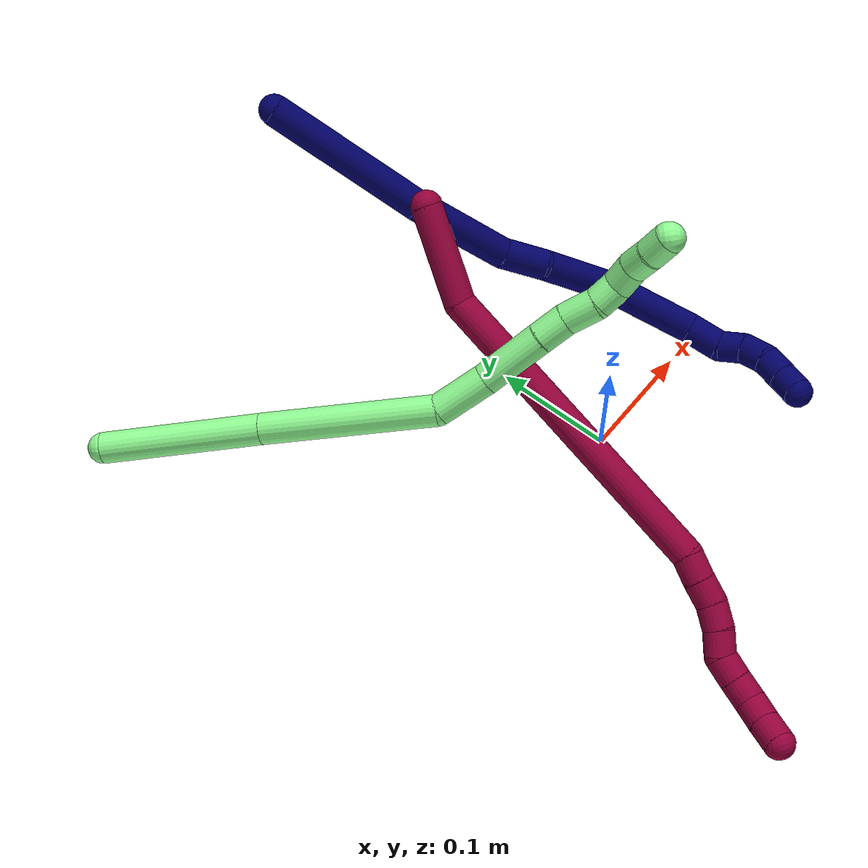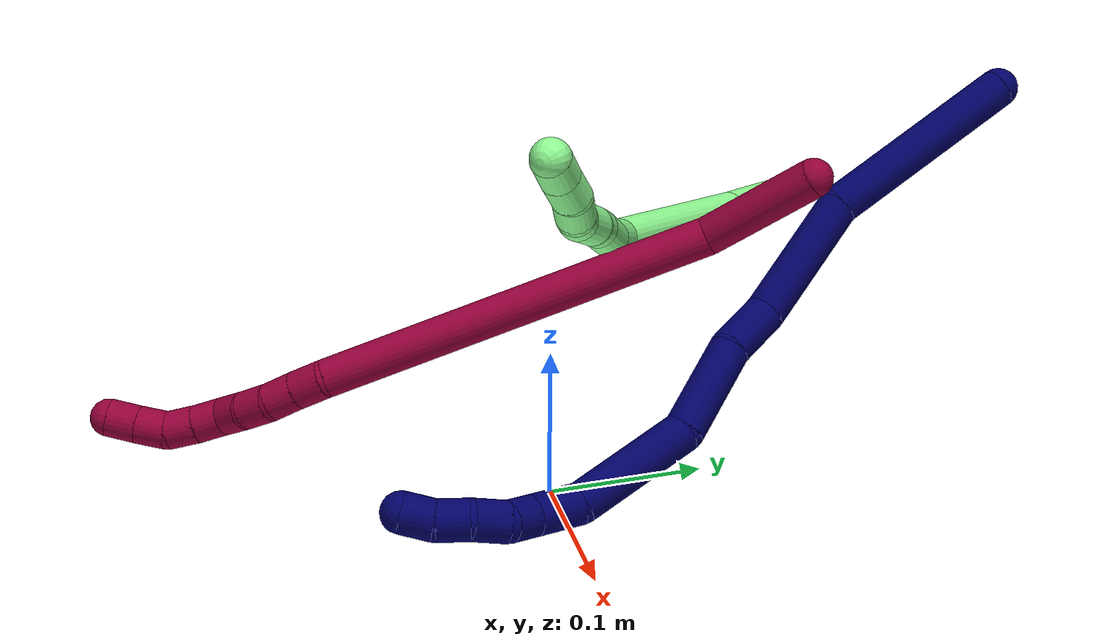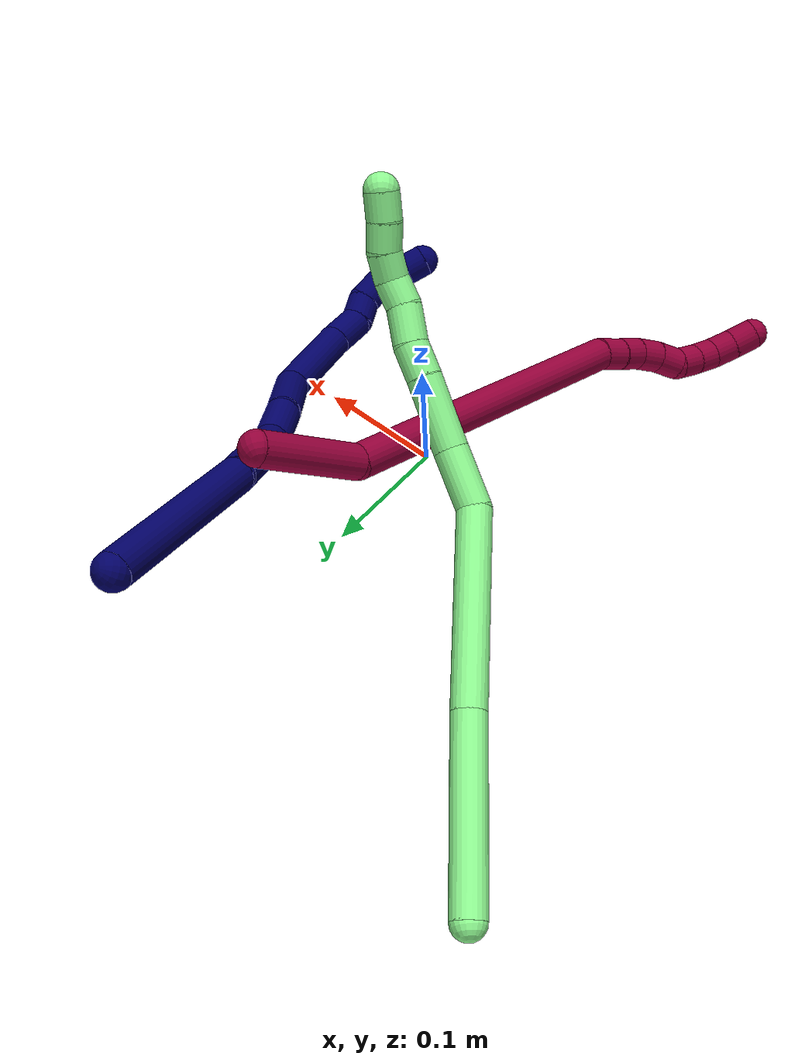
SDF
<sdf version="1.7">
 <world name="default">
  <model name="7">
   <static>0</static>
   <link name="7">
    <collision name="collision-cylinder-e_1_1_4">
     <pose>0.007265 -0.041772 -0.050498 2.45049 0.110404 0.304617</pose>
     <geometry><cylinder><radius>0.0125</radius><length>0.131874</length></cylinder></geometry>
     <surface>
      <friction><ode><mu>1.16</mu><mu2>1.16</mu2><slip1>0</slip1><slip2>0</slip2></ode></friction>
      <contact><ode><kp>1e+06</kp><kd>1</kd><max_vel>0</max_vel><min_depth>0.001</min_depth></ode></contact>
     </surface>
    </collision>
    <visual name="visual-cylinder-e_1_1_4">
     <pose>0.007265 -0.041772 -0.050498 2.45049 0.110404 0.304617</pose>
     <geometry><cylinder><radius>0.0125</radius><length>0.131874</length></cylinder></geometry>
     <material><ambient>0.003922 0 0.403922 1</ambient></material>
    </visual>
    <collision name="collision-cylinder-e_2_4_5">
     <pose>0.031657 -0.106799 -0.13104 2.48288 0.423509 1.12286</pose>
     <geometry><cylinder><radius>0.0125</radius><length>0.08335</length></cylinder></geometry>
     <surface>
      <friction><ode><mu>1.16</mu><mu2>1.16</mu2><slip1>0</slip1><slip2>0</slip2></ode></friction>
      <contact><ode><kp>1e+06</kp><kd>1</kd><max_vel>0</max_vel><min_depth>0.001</min_depth></ode></contact>
     </surface>
    </collision>
    <visual name="visual-cylinder-e_2_4_5">
     <pose>0.031657 -0.106799 -0.13104 2.48288 0.423509 1.12286</pose>
     <geometry><cylinder><radius>0.0125</radius><length>0.08335</length></cylinder></geometry>
     <material><ambient>0.003922 0 0.403922 1</ambient></material>
    </visual>
    <collision name="collision-cylinder-e_3_5_6">
     <pose>0.054035 -0.144317 -0.171028 2.1796 0.293308 0.551658</pose>
     <geometry><cylinder><radius>0.0125</radius><length>0.036325</length></cylinder></geometry>
     <surface>
      <friction><ode><mu>1.16</mu><mu2>1.16</mu2><slip1>0</slip1><slip2>0</slip2></ode></friction>
      <contact><ode><kp>1e+06</kp><kd>1</kd><max_vel>0</max_vel><min_depth>0.001</min_depth></ode></contact>
     </surface>
    </collision>
    <visual name="visual-cylinder-e_3_5_6">
     <pose>0.054035 -0.144317 -0.171028 2.1796 0.293308 0.551658</pose>
     <geometry><cylinder><radius>0.0125</radius><length>0.036325</length></cylinder></geometry>
     <material><ambient>0.003922 0 0.403922 1</ambient></material>
    </visual>
    <collision name="collision-cylinder-e_4_6_7">
     <pose>0.074434 -0.178019 -0.199037 2.3196 0.518675 1.09369</pose>
     <geometry><cylinder><radius>0.0125</radius><length>0.061113</length></cylinder></geometry>
     <surface>
      <friction><ode><mu>1.16</mu><mu2>1.16</mu2><slip1>0</slip1><slip2>0</slip2></ode></friction>
      <contact><ode><kp>1e+06</kp><kd>1</kd><max_vel>0</max_vel><min_depth>0.001</min_depth></ode></contact>
     </surface>
    </collision>
    <visual name="visual-cylinder-e_4_6_7">
     <pose>0.074434 -0.178019 -0.199037 2.3196 0.518675 1.09369</pose>
     <geometry><cylinder><radius>0.0125</radius><length>0.061113</length></cylinder></geometry>
     <material><ambient>0.003922 0 0.403922 1</ambient></material>
    </visual>
    <collision name="collision-cylinder-e_5_7_8">
     <pose>0.093323 -0.225432 -0.243352 2.32439 0.097219 0.223779</pose>
     <geometry><cylinder><radius>0.0125</radius><length>0.077085</length></cylinder></geometry>
     <surface>
      <friction><ode><mu>1.16</mu><mu2>1.16</mu2><slip1>0</slip1><slip2>0</slip2></ode></friction>
      <contact><ode><kp>1e+06</kp><kd>1</kd><max_vel>0</max_vel><min_depth>0.001</min_depth></ode></contact>
     </surface>
    </collision>
    <visual name="visual-cylinder-e_5_7_8">
     <pose>0.093323 -0.225432 -0.243352 2.32439 0.097219 0.223779</pose>
     <geometry><cylinder><radius>0.0125</radius><length>0.077085</length></cylinder></geometry>
     <material><ambient>0.003922 0 0.403922 1</ambient></material>
    </visual>
    <collision name="collision-cylinder-e_6_8_9">
     <pose>0.093621 -0.263831 -0.278663 2.2864 -0.244259 -0.526186</pose>
     <geometry><cylinder><radius>0.0125</radius><length>0.028473</length></cylinder></geometry>
     <surface>
      <friction><ode><mu>1.16</mu><mu2>1.16</mu2><slip1>0</slip1><slip2>0</slip2></ode></friction>
      <contact><ode><kp>1e+06</kp><kd>1</kd><max_vel>0</max_vel><min_depth>0.001</min_depth></ode></contact>
     </surface>
    </collision>
    <visual name="visual-cylinder-e_6_8_9">
     <pose>0.093621 -0.263831 -0.278663 2.2864 -0.244259 -0.526186</pose>
     <geometry><cylinder><radius>0.0125</radius><length>0.028473</length></cylinder></geometry>
     <material><ambient>0.003922 0 0.403922 1</ambient></material>
    </visual>
    <collision name="collision-cylinder-e_7_9_10">
     <pose>0.089041 -0.28386 -0.290432 1.84544 -0.113528 -0.149817</pose>
     <geometry><cylinder><radius>0.0125</radius><length>0.020084</length></cylinder></geometry>
     <surface>
      <friction><ode><mu>1.16</mu><mu2>1.16</mu2><slip1>0</slip1><slip2>0</slip2></ode></friction>
      <contact><ode><kp>1e+06</kp><kd>1</kd><max_vel>0</max_vel><min_depth>0.001</min_depth></ode></contact>
     </surface>
    </collision>
    <visual name="visual-cylinder-e_7_9_10">
     <pose>0.089041 -0.28386 -0.290432 1.84544 -0.113528 -0.149817</pose>
     <geometry><cylinder><radius>0.0125</radius><length>0.020084</length></cylinder></geometry>
     <material><ambient>0.003922 0 0.403922 1</ambient></material>
    </visual>
    <collision name="collision-cylinder-e_8_10_11">
     <pose>0.082641 -0.301565 -0.297852 2.09776 -0.511554 -0.853519</pose>
     <geometry><cylinder><radius>0.0125</radius><length>0.021499</length></cylinder></geometry>
     <surface>
      <friction><ode><mu>1.16</mu><mu2>1.16</mu2><slip1>0</slip1><slip2>0</slip2></ode></friction>
      <contact><ode><kp>1e+06</kp><kd>1</kd><max_vel>0</max_vel><min_depth>0.001</min_depth></ode></contact>
     </surface>
    </collision>
    <visual name="visual-cylinder-e_8_10_11">
     <pose>0.082641 -0.301565 -0.297852 2.09776 -0.511554 -0.853519</pose>
     <geometry><cylinder><radius>0.0125</radius><length>0.021499</length></cylinder></geometry>
     <material><ambient>0.003922 0 0.403922 1</ambient></material>
    </visual>
    <collision name="collision-cylinder-e_9_11_12">
     <pose>0.072429 -0.315129 -0.30942 2.4688 -0.514077 -1.28915</pose>
     <geometry><cylinder><radius>0.0125</radius><length>0.02013</length></cylinder></geometry>
     <surface>
      <friction><ode><mu>1.16</mu><mu2>1.16</mu2><slip1>0</slip1><slip2>0</slip2></ode></friction>
      <contact><ode><kp>1e+06</kp><kd>1</kd><max_vel>0</max_vel><min_depth>0.001</min_depth></ode></contact>
     </surface>
    </collision>
    <visual name="visual-cylinder-e_9_11_12">
     <pose>0.072429 -0.315129 -0.30942 2.4688 -0.514077 -1.28915</pose>
     <geometry><cylinder><radius>0.0125</radius><length>0.02013</length></cylinder></geometry>
     <material><ambient>0.003922 0 0.403922 1</ambient></material>
    </visual>
    <collision name="collision-cylinder-e_10_12_2">
     <pose>0.060486 -0.325531 -0.321504 2.38457 -0.771297 -1.59143</pose>
     <geometry><cylinder><radius>0.0125</radius><length>0.020066</length></cylinder></geometry>
     <surface>
      <friction><ode><mu>1.16</mu><mu2>1.16</mu2><slip1>0</slip1><slip2>0</slip2></ode></friction>
      <contact><ode><kp>1e+06</kp><kd>1</kd><max_vel>0</max_vel><min_depth>0.001</min_depth></ode></contact>
     </surface>
    </collision>
    <visual name="visual-cylinder-e_10_12_2">
     <pose>0.060486 -0.325531 -0.321504 2.38457 -0.771297 -1.59143</pose>
     <geometry><cylinder><radius>0.0125</radius><length>0.020066</length></cylinder></geometry>
     <material><ambient>0.003922 0 0.403922 1</ambient></material>
    </visual>
    <collision name="collision-sphere-2">
     <pose>0.053492 -0.330471 -0.326733 0 -0 0</pose>
     <geometry><sphere><radius>0.0125</radius></sphere></geometry>
     <surface>
      <friction><ode><mu>1.16</mu><mu2>1.16</mu2><slip1>0</slip1><slip2>0</slip2></ode></friction>
      <contact><ode><kp>1e+06</kp><kd>1</kd><max_vel>0</max_vel><min_depth>0.001</min_depth></ode></contact>
     </surface>
    </collision>
    <visual name="visual-sphere-2">
     <pose>0.053492 -0.330471 -0.326733 0 -0 0</pose>
     <geometry><sphere><radius>0.0125</radius></sphere></geometry>
     <material><ambient>0.003922 0 0.403922 1</ambient></material>
    </visual>
    <collision name="collision-sphere-12">
     <pose>0.06748 -0.32059 -0.316275 0 -0 0</pose>
     <geometry><sphere><radius>0.0125</radius></sphere></geometry>
     <surface>
      <friction><ode><mu>1.16</mu><mu2>1.16</mu2><slip1>0</slip1><slip2>0</slip2></ode></friction>
      <contact><ode><kp>1e+06</kp><kd>1</kd><max_vel>0</max_vel><min_depth>0.001</min_depth></ode></contact>
     </surface>
    </collision>
    <visual name="visual-sphere-12">
     <pose>0.06748 -0.32059 -0.316275 0 -0 0</pose>
     <geometry><sphere><radius>0.0125</radius></sphere></geometry>
     <material><ambient>0.003922 0 0.403922 1</ambient></material>
    </visual>
    <collision name="collision-sphere-11">
     <pose>0.077379 -0.309667 -0.302566 0 -0 0</pose>
     <geometry><sphere><radius>0.0125</radius></sphere></geometry>
     <surface>
      <friction><ode><mu>1.16</mu><mu2>1.16</mu2><slip1>0</slip1><slip2>0</slip2></ode></friction>
      <contact><ode><kp>1e+06</kp><kd>1</kd><max_vel>0</max_vel><min_depth>0.001</min_depth></ode></contact>
     </surface>
    </collision>
    <visual name="visual-sphere-11">
     <pose>0.077379 -0.309667 -0.302566 0 -0 0</pose>
     <geometry><sphere><radius>0.0125</radius></sphere></geometry>
     <material><ambient>0.003922 0 0.403922 1</ambient></material>
    </visual>
    <collision name="collision-sphere-10">
     <pose>0.087903 -0.293463 -0.293138 0 -0 0</pose>
     <geometry><sphere><radius>0.0125</radius></sphere></geometry>
     <surface>
      <friction><ode><mu>1.16</mu><mu2>1.16</mu2><slip1>0</slip1><slip2>0</slip2></ode></friction>
      <contact><ode><kp>1e+06</kp><kd>1</kd><max_vel>0</max_vel><min_depth>0.001</min_depth></ode></contact>
     </surface>
    </collision>
    <visual name="visual-sphere-10">
     <pose>0.087903 -0.293463 -0.293138 0 -0 0</pose>
     <geometry><sphere><radius>0.0125</radius></sphere></geometry>
     <material><ambient>0.003922 0 0.403922 1</ambient></material>
    </visual>
    <collision name="collision-sphere-9">
     <pose>0.090178 -0.274256 -0.287726 0 -0 0</pose>
     <geometry><sphere><radius>0.0125</radius></sphere></geometry>
     <surface>
      <friction><ode><mu>1.16</mu><mu2>1.16</mu2><slip1>0</slip1><slip2>0</slip2></ode></friction>
      <contact><ode><kp>1e+06</kp><kd>1</kd><max_vel>0</max_vel><min_depth>0.001</min_depth></ode></contact>
     </surface>
    </collision>
    <visual name="visual-sphere-9">
     <pose>0.090178 -0.274256 -0.287726 0 -0 0</pose>
     <geometry><sphere><radius>0.0125</radius></sphere></geometry>
     <material><ambient>0.003922 0 0.403922 1</ambient></material>
    </visual>
    <collision name="collision-sphere-4">
     <pose>0.01453 -0.083543 -0.100996 0 -0 0</pose>
     <geometry><sphere><radius>0.0125</radius></sphere></geometry>
     <surface>
      <friction><ode><mu>1.16</mu><mu2>1.16</mu2><slip1>0</slip1><slip2>0</slip2></ode></friction>
      <contact><ode><kp>1e+06</kp><kd>1</kd><max_vel>0</max_vel><min_depth>0.001</min_depth></ode></contact>
     </surface>
    </collision>
    <visual name="visual-sphere-4">
     <pose>0.01453 -0.083543 -0.100996 0 -0 0</pose>
     <geometry><sphere><radius>0.0125</radius></sphere></geometry>
     <material><ambient>0.003922 0 0.403922 1</ambient></material>
    </visual>
    <collision name="collision-sphere-1">
     <geometry><sphere><radius>0.0125</radius></sphere></geometry>
     <surface>
      <friction><ode><mu>1.16</mu><mu2>1.16</mu2><slip1>0</slip1><slip2>0</slip2></ode></friction>
      <contact><ode><kp>1e+06</kp><kd>1</kd><max_vel>0</max_vel><min_depth>0.001</min_depth></ode></contact>
     </surface>
    </collision>
    <visual name="visual-sphere-1">
     <geometry><sphere><radius>0.0125</radius></sphere></geometry>
     <material><ambient>0.003922 0 0.403922 1</ambient></material>
    </visual>
    <collision name="collision-sphere-8">
     <pose>0.097064 -0.253406 -0.269601 0 -0 0</pose>
     <geometry><sphere><radius>0.0125</radius></sphere></geometry>
     <surface>
      <friction><ode><mu>1.16</mu><mu2>1.16</mu2><slip1>0</slip1><slip2>0</slip2></ode></friction>
      <contact><ode><kp>1e+06</kp><kd>1</kd><max_vel>0</max_vel><min_depth>0.001</min_depth></ode></contact>
     </surface>
    </collision>
    <visual name="visual-sphere-8">
     <pose>0.097064 -0.253406 -0.269601 0 -0 0</pose>
     <geometry><sphere><radius>0.0125</radius></sphere></geometry>
     <material><ambient>0.003922 0 0.403922 1</ambient></material>
    </visual>
    <collision name="collision-sphere-5">
     <pose>0.048784 -0.130054 -0.161085 0 -0 0</pose>
     <geometry><sphere><radius>0.0125</radius></sphere></geometry>
     <surface>
      <friction><ode><mu>1.16</mu><mu2>1.16</mu2><slip1>0</slip1><slip2>0</slip2></ode></friction>
      <contact><ode><kp>1e+06</kp><kd>1</kd><max_vel>0</max_vel><min_depth>0.001</min_depth></ode></contact>
     </surface>
    </collision>
    <visual name="visual-sphere-5">
     <pose>0.048784 -0.130054 -0.161085 0 -0 0</pose>
     <geometry><sphere><radius>0.0125</radius></sphere></geometry>
     <material><ambient>0.003922 0 0.403922 1</ambient></material>
    </visual>
    <collision name="collision-sphere-6">
     <pose>0.059286 -0.15858 -0.180971 0 -0 0</pose>
     <geometry><sphere><radius>0.0125</radius></sphere></geometry>
     <surface>
      <friction><ode><mu>1.16</mu><mu2>1.16</mu2><slip1>0</slip1><slip2>0</slip2></ode></friction>
      <contact><ode><kp>1e+06</kp><kd>1</kd><max_vel>0</max_vel><min_depth>0.001</min_depth></ode></contact>
     </surface>
    </collision>
    <visual name="visual-sphere-6">
     <pose>0.059286 -0.15858 -0.180971 0 -0 0</pose>
     <geometry><sphere><radius>0.0125</radius></sphere></geometry>
     <material><ambient>0.003922 0 0.403922 1</ambient></material>
    </visual>
    <collision name="collision-sphere-7">
     <pose>0.089582 -0.197458 -0.217103 0 -0 0</pose>
     <geometry><sphere><radius>0.0125</radius></sphere></geometry>
     <surface>
      <friction><ode><mu>1.16</mu><mu2>1.16</mu2><slip1>0</slip1><slip2>0</slip2></ode></friction>
      <contact><ode><kp>1e+06</kp><kd>1</kd><max_vel>0</max_vel><min_depth>0.001</min_depth></ode></contact>
     </surface>
    </collision>
    <visual name="visual-sphere-7">
     <pose>0.089582 -0.197458 -0.217103 0 -0 0</pose>
     <geometry><sphere><radius>0.0125</radius></sphere></geometry>
     <material><ambient>0.003922 0 0.403922 1</ambient></material>
    </visual>
    <inertial>
     <pose>0.052409 -0.160963 -0.175136 0 -0 0</pose>
     <mass>0.5</mass>
     <inertia>
      <ixx>0.000393</ixx>
      <ixy>0</ixy>
      <ixz>0</ixz>
      <iyy>-7.7e-05</iyy>
      <iyz>0</iyz>
      <izz>0.000126</izz>
     </inertia>
    </inertial>
   </link>
   <pose>-0.037056 0.303386 0.226611 -0.434053 0.634918 0.429129</pose>
  </model>
  <model name="8">
   <static>0</static>
   <link name="8">
    <collision name="collision-cylinder-e_1_1_4">
     <pose>-0.018624 -0.034772 -0.001416 1.6115 -0.49138 -0.510938</pose>
     <geometry><cylinder><radius>0.0125</radius><length>0.078942</length></cylinder></geometry>
     <surface>
      <friction><ode><mu>1.16</mu><mu2>1.16</mu2><slip1>0</slip1><slip2>0</slip2></ode></friction>
      <contact><ode><kp>1e+06</kp><kd>1</kd><max_vel>0</max_vel><min_depth>0.001</min_depth></ode></contact>
     </surface>
    </collision>
    <visual name="visual-cylinder-e_1_1_4">
     <pose>-0.018624 -0.034772 -0.001416 1.6115 -0.49138 -0.510938</pose>
     <geometry><cylinder><radius>0.0125</radius><length>0.078942</length></cylinder></geometry>
     <material><ambient>0.584314 0 0.227451 1</ambient></material>
    </visual>
    <collision name="collision-cylinder-e_2_4_5">
     <pose>-0.065665 -0.184755 -0.054314 1.99102 -0.221495 -0.339675</pose>
     <geometry><cylinder><radius>0.0125</radius><length>0.258701</length></cylinder></geometry>
     <surface>
      <friction><ode><mu>1.16</mu><mu2>1.16</mu2><slip1>0</slip1><slip2>0</slip2></ode></friction>
      <contact><ode><kp>1e+06</kp><kd>1</kd><max_vel>0</max_vel><min_depth>0.001</min_depth></ode></contact>
     </surface>
    </collision>
    <visual name="visual-cylinder-e_2_4_5">
     <pose>-0.065665 -0.184755 -0.054314 1.99102 -0.221495 -0.339675</pose>
     <geometry><cylinder><radius>0.0125</radius><length>0.258701</length></cylinder></geometry>
     <material><ambient>0.584314 0 0.227451 1</ambient></material>
    </visual>
    <collision name="collision-cylinder-e_3_5_6">
     <pose>-0.097726 -0.309753 -0.107086 1.70198 -0.353678 -0.402158</pose>
     <geometry><cylinder><radius>0.0125</radius><length>0.021046</length></cylinder></geometry>
     <surface>
      <friction><ode><mu>1.16</mu><mu2>1.16</mu2><slip1>0</slip1><slip2>0</slip2></ode></friction>
      <contact><ode><kp>1e+06</kp><kd>1</kd><max_vel>0</max_vel><min_depth>0.001</min_depth></ode></contact>
     </surface>
    </collision>
    <visual name="visual-cylinder-e_3_5_6">
     <pose>-0.097726 -0.309753 -0.107086 1.70198 -0.353678 -0.402158</pose>
     <geometry><cylinder><radius>0.0125</radius><length>0.021046</length></cylinder></geometry>
     <material><ambient>0.584314 0 0.227451 1</ambient></material>
    </visual>
    <collision name="collision-cylinder-e_4_6_7">
     <pose>-0.10503 -0.328816 -0.110276 1.77266 -0.368773 -0.449359</pose>
     <geometry><cylinder><radius>0.0125</radius><length>0.020301</length></cylinder></geometry>
     <surface>
      <friction><ode><mu>1.16</mu><mu2>1.16</mu2><slip1>0</slip1><slip2>0</slip2></ode></friction>
      <contact><ode><kp>1e+06</kp><kd>1</kd><max_vel>0</max_vel><min_depth>0.001</min_depth></ode></contact>
     </surface>
    </collision>
    <visual name="visual-cylinder-e_4_6_7">
     <pose>-0.10503 -0.328816 -0.110276 1.77266 -0.368773 -0.449359</pose>
     <geometry><cylinder><radius>0.0125</radius><length>0.020301</length></cylinder></geometry>
     <material><ambient>0.584314 0 0.227451 1</ambient></material>
    </visual>
    <collision name="collision-cylinder-e_5_7_8">
     <pose>-0.112148 -0.347773 -0.111627 1.51437 -0.34268 -0.324206</pose>
     <geometry><cylinder><radius>0.0125</radius><length>0.020592</length></cylinder></geometry>
     <surface>
      <friction><ode><mu>1.16</mu><mu2>1.16</mu2><slip1>0</slip1><slip2>0</slip2></ode></friction>
      <contact><ode><kp>1e+06</kp><kd>1</kd><max_vel>0</max_vel><min_depth>0.001</min_depth></ode></contact>
     </surface>
    </collision>
    <visual name="visual-cylinder-e_5_7_8">
     <pose>-0.112148 -0.347773 -0.111627 1.51437 -0.34268 -0.324206</pose>
     <geometry><cylinder><radius>0.0125</radius><length>0.020592</length></cylinder></geometry>
     <material><ambient>0.584314 0 0.227451 1</ambient></material>
    </visual>
    <collision name="collision-cylinder-e_6_8_9">
     <pose>-0.119194 -0.366663 -0.108519 1.29952 -0.359009 -0.274026</pose>
     <geometry><cylinder><radius>0.0125</radius><length>0.020417</length></cylinder></geometry>
     <surface>
      <friction><ode><mu>1.16</mu><mu2>1.16</mu2><slip1>0</slip1><slip2>0</slip2></ode></friction>
      <contact><ode><kp>1e+06</kp><kd>1</kd><max_vel>0</max_vel><min_depth>0.001</min_depth></ode></contact>
     </surface>
    </collision>
    <visual name="visual-cylinder-e_6_8_9">
     <pose>-0.119194 -0.366663 -0.108519 1.29952 -0.359009 -0.274026</pose>
     <geometry><cylinder><radius>0.0125</radius><length>0.020417</length></cylinder></geometry>
     <material><ambient>0.584314 0 0.227451 1</ambient></material>
    </visual>
    <collision name="collision-cylinder-e_7_9_10">
     <pose>-0.124916 -0.385354 -0.10831 1.81388 -0.215122 -0.274317</pose>
     <geometry><cylinder><radius>0.0125</radius><length>0.020002</length></cylinder></geometry>
     <surface>
      <friction><ode><mu>1.16</mu><mu2>1.16</mu2><slip1>0</slip1><slip2>0</slip2></ode></friction>
      <contact><ode><kp>1e+06</kp><kd>1</kd><max_vel>0</max_vel><min_depth>0.001</min_depth></ode></contact>
     </surface>
    </collision>
    <visual name="visual-cylinder-e_7_9_10">
     <pose>-0.124916 -0.385354 -0.10831 1.81388 -0.215122 -0.274317</pose>
     <geometry><cylinder><radius>0.0125</radius><length>0.020002</length></cylinder></geometry>
     <material><ambient>0.584314 0 0.227451 1</ambient></material>
    </visual>
    <collision name="collision-cylinder-e_8_10_11">
     <pose>-0.128436 -0.404417 -0.113175 1.82737 -0.138958 -0.179921</pose>
     <geometry><cylinder><radius>0.0125</radius><length>0.02</length></cylinder></geometry>
     <surface>
      <friction><ode><mu>1.16</mu><mu2>1.16</mu2><slip1>0</slip1><slip2>0</slip2></ode></friction>
      <contact><ode><kp>1e+06</kp><kd>1</kd><max_vel>0</max_vel><min_depth>0.001</min_depth></ode></contact>
     </surface>
    </collision>
    <visual name="visual-cylinder-e_8_10_11">
     <pose>-0.128436 -0.404417 -0.113175 1.82737 -0.138958 -0.179921</pose>
     <geometry><cylinder><radius>0.0125</radius><length>0.02</length></cylinder></geometry>
     <material><ambient>0.584314 0 0.227451 1</ambient></material>
    </visual>
    <collision name="collision-cylinder-e_9_11_12">
     <pose>-0.127307 -0.42359 -0.116975 1.70413 0.254167 0.290057</pose>
     <geometry><cylinder><radius>0.0125</radius><length>0.02</length></cylinder></geometry>
     <surface>
      <friction><ode><mu>1.16</mu><mu2>1.16</mu2><slip1>0</slip1><slip2>0</slip2></ode></friction>
      <contact><ode><kp>1e+06</kp><kd>1</kd><max_vel>0</max_vel><min_depth>0.001</min_depth></ode></contact>
     </surface>
    </collision>
    <visual name="visual-cylinder-e_9_11_12">
     <pose>-0.127307 -0.42359 -0.116975 1.70413 0.254167 0.290057</pose>
     <geometry><cylinder><radius>0.0125</radius><length>0.02</length></cylinder></geometry>
     <material><ambient>0.584314 0 0.227451 1</ambient></material>
    </visual>
    <collision name="collision-cylinder-e_10_12_2">
     <pose>-0.121808 -0.442613 -0.119733 1.72559 0.303036 0.353011</pose>
     <geometry><cylinder><radius>0.0125</radius><length>0.02</length></cylinder></geometry>
     <surface>
      <friction><ode><mu>1.16</mu><mu2>1.16</mu2><slip1>0</slip1><slip2>0</slip2></ode></friction>
      <contact><ode><kp>1e+06</kp><kd>1</kd><max_vel>0</max_vel><min_depth>0.001</min_depth></ode></contact>
     </surface>
    </collision>
    <visual name="visual-cylinder-e_10_12_2">
     <pose>-0.121808 -0.442613 -0.119733 1.72559 0.303036 0.353011</pose>
     <geometry><cylinder><radius>0.0125</radius><length>0.02</length></cylinder></geometry>
     <material><ambient>0.584314 0 0.227451 1</ambient></material>
    </visual>
    <collision name="collision-sphere-2">
     <pose>-0.118824 -0.452043 -0.121204 0 -0 0</pose>
     <geometry><sphere><radius>0.0125</radius></sphere></geometry>
     <surface>
      <friction><ode><mu>1.16</mu><mu2>1.16</mu2><slip1>0</slip1><slip2>0</slip2></ode></friction>
      <contact><ode><kp>1e+06</kp><kd>1</kd><max_vel>0</max_vel><min_depth>0.001</min_depth></ode></contact>
     </surface>
    </collision>
    <visual name="visual-sphere-2">
     <pose>-0.118824 -0.452043 -0.121204 0 -0 0</pose>
     <geometry><sphere><radius>0.0125</radius></sphere></geometry>
     <material><ambient>0.584314 0 0.227451 1</ambient></material>
    </visual>
    <collision name="collision-sphere-12">
     <pose>-0.124792 -0.433183 -0.118261 0 -0 0</pose>
     <geometry><sphere><radius>0.0125</radius></sphere></geometry>
     <surface>
      <friction><ode><mu>1.16</mu><mu2>1.16</mu2><slip1>0</slip1><slip2>0</slip2></ode></friction>
      <contact><ode><kp>1e+06</kp><kd>1</kd><max_vel>0</max_vel><min_depth>0.001</min_depth></ode></contact>
     </surface>
    </collision>
    <visual name="visual-sphere-12">
     <pose>-0.124792 -0.433183 -0.118261 0 -0 0</pose>
     <geometry><sphere><radius>0.0125</radius></sphere></geometry>
     <material><ambient>0.584314 0 0.227451 1</ambient></material>
    </visual>
    <collision name="collision-sphere-11">
     <pose>-0.129821 -0.413997 -0.115688 0 -0 0</pose>
     <geometry><sphere><radius>0.0125</radius></sphere></geometry>
     <surface>
      <friction><ode><mu>1.16</mu><mu2>1.16</mu2><slip1>0</slip1><slip2>0</slip2></ode></friction>
      <contact><ode><kp>1e+06</kp><kd>1</kd><max_vel>0</max_vel><min_depth>0.001</min_depth></ode></contact>
     </surface>
    </collision>
    <visual name="visual-sphere-11">
     <pose>-0.129821 -0.413997 -0.115688 0 -0 0</pose>
     <geometry><sphere><radius>0.0125</radius></sphere></geometry>
     <material><ambient>0.584314 0 0.227451 1</ambient></material>
    </visual>
    <collision name="collision-sphere-10">
     <pose>-0.127051 -0.394838 -0.110662 0 -0 0</pose>
     <geometry><sphere><radius>0.0125</radius></sphere></geometry>
     <surface>
      <friction><ode><mu>1.16</mu><mu2>1.16</mu2><slip1>0</slip1><slip2>0</slip2></ode></friction>
      <contact><ode><kp>1e+06</kp><kd>1</kd><max_vel>0</max_vel><min_depth>0.001</min_depth></ode></contact>
     </surface>
    </collision>
    <visual name="visual-sphere-10">
     <pose>-0.127051 -0.394838 -0.110662 0 -0 0</pose>
     <geometry><sphere><radius>0.0125</radius></sphere></geometry>
     <material><ambient>0.584314 0 0.227451 1</ambient></material>
    </visual>
    <collision name="collision-sphere-9">
     <pose>-0.122781 -0.375871 -0.105958 0 -0 0</pose>
     <geometry><sphere><radius>0.0125</radius></sphere></geometry>
     <surface>
      <friction><ode><mu>1.16</mu><mu2>1.16</mu2><slip1>0</slip1><slip2>0</slip2></ode></friction>
      <contact><ode><kp>1e+06</kp><kd>1</kd><max_vel>0</max_vel><min_depth>0.001</min_depth></ode></contact>
     </surface>
    </collision>
    <visual name="visual-sphere-9">
     <pose>-0.122781 -0.375871 -0.105958 0 -0 0</pose>
     <geometry><sphere><radius>0.0125</radius></sphere></geometry>
     <material><ambient>0.584314 0 0.227451 1</ambient></material>
    </visual>
    <collision name="collision-sphere-4">
     <pose>-0.037248 -0.069544 -0.002832 0 -0 0</pose>
     <geometry><sphere><radius>0.0125</radius></sphere></geometry>
     <surface>
      <friction><ode><mu>1.16</mu><mu2>1.16</mu2><slip1>0</slip1><slip2>0</slip2></ode></friction>
      <contact><ode><kp>1e+06</kp><kd>1</kd><max_vel>0</max_vel><min_depth>0.001</min_depth></ode></contact>
     </surface>
    </collision>
    <visual name="visual-sphere-4">
     <pose>-0.037248 -0.069544 -0.002832 0 -0 0</pose>
     <geometry><sphere><radius>0.0125</radius></sphere></geometry>
     <material><ambient>0.584314 0 0.227451 1</ambient></material>
    </visual>
    <collision name="collision-sphere-1">
     <geometry><sphere><radius>0.0125</radius></sphere></geometry>
     <surface>
      <friction><ode><mu>1.16</mu><mu2>1.16</mu2><slip1>0</slip1><slip2>0</slip2></ode></friction>
      <contact><ode><kp>1e+06</kp><kd>1</kd><max_vel>0</max_vel><min_depth>0.001</min_depth></ode></contact>
     </surface>
    </collision>
    <visual name="visual-sphere-1">
     <geometry><sphere><radius>0.0125</radius></sphere></geometry>
     <material><ambient>0.584314 0 0.227451 1</ambient></material>
    </visual>
    <collision name="collision-sphere-8">
     <pose>-0.115608 -0.357455 -0.11108 0 -0 0</pose>
     <geometry><sphere><radius>0.0125</radius></sphere></geometry>
     <surface>
      <friction><ode><mu>1.16</mu><mu2>1.16</mu2><slip1>0</slip1><slip2>0</slip2></ode></friction>
      <contact><ode><kp>1e+06</kp><kd>1</kd><max_vel>0</max_vel><min_depth>0.001</min_depth></ode></contact>
     </surface>
    </collision>
    <visual name="visual-sphere-8">
     <pose>-0.115608 -0.357455 -0.11108 0 -0 0</pose>
     <geometry><sphere><radius>0.0125</radius></sphere></geometry>
     <material><ambient>0.584314 0 0.227451 1</ambient></material>
    </visual>
    <collision name="collision-sphere-5">
     <pose>-0.094082 -0.299966 -0.105795 0 -0 0</pose>
     <geometry><sphere><radius>0.0125</radius></sphere></geometry>
     <surface>
      <friction><ode><mu>1.16</mu><mu2>1.16</mu2><slip1>0</slip1><slip2>0</slip2></ode></friction>
      <contact><ode><kp>1e+06</kp><kd>1</kd><max_vel>0</max_vel><min_depth>0.001</min_depth></ode></contact>
     </surface>
    </collision>
    <visual name="visual-sphere-5">
     <pose>-0.094082 -0.299966 -0.105795 0 -0 0</pose>
     <geometry><sphere><radius>0.0125</radius></sphere></geometry>
     <material><ambient>0.584314 0 0.227451 1</ambient></material>
    </visual>
    <collision name="collision-sphere-6">
     <pose>-0.101371 -0.31954 -0.108378 0 -0 0</pose>
     <geometry><sphere><radius>0.0125</radius></sphere></geometry>
     <surface>
      <friction><ode><mu>1.16</mu><mu2>1.16</mu2><slip1>0</slip1><slip2>0</slip2></ode></friction>
      <contact><ode><kp>1e+06</kp><kd>1</kd><max_vel>0</max_vel><min_depth>0.001</min_depth></ode></contact>
     </surface>
    </collision>
    <visual name="visual-sphere-6">
     <pose>-0.101371 -0.31954 -0.108378 0 -0 0</pose>
     <geometry><sphere><radius>0.0125</radius></sphere></geometry>
     <material><ambient>0.584314 0 0.227451 1</ambient></material>
    </visual>
    <collision name="collision-sphere-7">
     <pose>-0.108689 -0.338091 -0.112174 0 -0 0</pose>
     <geometry><sphere><radius>0.0125</radius></sphere></geometry>
     <surface>
      <friction><ode><mu>1.16</mu><mu2>1.16</mu2><slip1>0</slip1><slip2>0</slip2></ode></friction>
      <contact><ode><kp>1e+06</kp><kd>1</kd><max_vel>0</max_vel><min_depth>0.001</min_depth></ode></contact>
     </surface>
    </collision>
    <visual name="visual-sphere-7">
     <pose>-0.108689 -0.338091 -0.112174 0 -0 0</pose>
     <geometry><sphere><radius>0.0125</radius></sphere></geometry>
     <material><ambient>0.584314 0 0.227451 1</ambient></material>
    </visual>
    <inertial>
     <pose>-0.074878 -0.223007 -0.064667 0 -0 0</pose>
     <mass>0.5</mass>
     <inertia>
      <ixx>0.000879</ixx>
      <ixy>0</ixy>
      <ixz>0</ixz>
      <iyy>-0.000982</iyy>
      <iyz>0</iyz>
      <izz>0.001676</izz>
     </inertia>
    </inertial>
   </link>
   <pose>-0.014204 0.172081 0.190316 1.95598 -1.42197 -2.52133</pose>
  </model>
  <model name="13">
   <static>0</static>
   <link name="13">
    <collision name="collision-cylinder-e_1_1_4">
     <pose>0.000198 -0.010156 -0.064405 2.9852 0.003038 0.03877</pose>
     <geometry><cylinder><radius>0.0125</radius><length>0.130403</length></cylinder></geometry>
     <surface>
      <friction><ode><mu>1.16</mu><mu2>1.16</mu2><slip1>0</slip1><slip2>0</slip2></ode></friction>
      <contact><ode><kp>1e+06</kp><kd>1</kd><max_vel>0</max_vel><min_depth>0.001</min_depth></ode></contact>
     </surface>
    </collision>
    <visual name="visual-cylinder-e_1_1_4">
     <pose>0.000198 -0.010156 -0.064405 2.9852 0.003038 0.03877</pose>
     <geometry><cylinder><radius>0.0125</radius><length>0.130403</length></cylinder></geometry>
     <material><ambient>0.564706 0.984314 0.572549 1</ambient></material>
    </visual>
    <collision name="collision-cylinder-e_2_4_5">
     <pose>-0.000493 -0.032882 -0.198412 2.96291 -0.012573 -0.140127</pose>
     <geometry><cylinder><radius>0.0125</radius><length>0.141466</length></cylinder></geometry>
     <surface>
      <friction><ode><mu>1.16</mu><mu2>1.16</mu2><slip1>0</slip1><slip2>0</slip2></ode></friction>
      <contact><ode><kp>1e+06</kp><kd>1</kd><max_vel>0</max_vel><min_depth>0.001</min_depth></ode></contact>
     </surface>
    </collision>
    <visual name="visual-cylinder-e_2_4_5">
     <pose>-0.000493 -0.032882 -0.198412 2.96291 -0.012573 -0.140127</pose>
     <geometry><cylinder><radius>0.0125</radius><length>0.141466</length></cylinder></geometry>
     <material><ambient>0.564706 0.984314 0.572549 1</ambient></material>
    </visual>
    <collision name="collision-cylinder-e_3_5_6">
     <pose>0.008174 -0.049359 -0.287199 2.94075 0.45405 2.31901</pose>
     <geometry><cylinder><radius>0.0125</radius><length>0.043576</length></cylinder></geometry>
     <surface>
      <friction><ode><mu>1.16</mu><mu2>1.16</mu2><slip1>0</slip1><slip2>0</slip2></ode></friction>
      <contact><ode><kp>1e+06</kp><kd>1</kd><max_vel>0</max_vel><min_depth>0.001</min_depth></ode></contact>
     </surface>
    </collision>
    <visual name="visual-cylinder-e_3_5_6">
     <pose>0.008174 -0.049359 -0.287199 2.94075 0.45405 2.31901</pose>
     <geometry><cylinder><radius>0.0125</radius><length>0.043576</length></cylinder></geometry>
     <material><ambient>0.564706 0.984314 0.572549 1</ambient></material>
    </visual>
    <collision name="collision-cylinder-e_4_6_7">
     <pose>0.030217 -0.060753 -0.328223 2.81125 0.495839 1.97689</pose>
     <geometry><cylinder><radius>0.0125</radius><length>0.052492</length></cylinder></geometry>
     <surface>
      <friction><ode><mu>1.16</mu><mu2>1.16</mu2><slip1>0</slip1><slip2>0</slip2></ode></friction>
      <contact><ode><kp>1e+06</kp><kd>1</kd><max_vel>0</max_vel><min_depth>0.001</min_depth></ode></contact>
     </surface>
    </collision>
    <visual name="visual-cylinder-e_4_6_7">
     <pose>0.030217 -0.060753 -0.328223 2.81125 0.495839 1.97689</pose>
     <geometry><cylinder><radius>0.0125</radius><length>0.052492</length></cylinder></geometry>
     <material><ambient>0.564706 0.984314 0.572549 1</ambient></material>
    </visual>
    <collision name="collision-cylinder-e_5_7_8">
     <pose>0.048562 -0.070934 -0.360454 2.88808 0.499464 2.21486</pose>
     <geometry><cylinder><radius>0.0125</radius><length>0.024463</length></cylinder></geometry>
     <surface>
      <friction><ode><mu>1.16</mu><mu2>1.16</mu2><slip1>0</slip1><slip2>0</slip2></ode></friction>
      <contact><ode><kp>1e+06</kp><kd>1</kd><max_vel>0</max_vel><min_depth>0.001</min_depth></ode></contact>
     </surface>
    </collision>
    <visual name="visual-cylinder-e_5_7_8">
     <pose>0.048562 -0.070934 -0.360454 2.88808 0.499464 2.21486</pose>
     <geometry><cylinder><radius>0.0125</radius><length>0.024463</length></cylinder></geometry>
     <material><ambient>0.564706 0.984314 0.572549 1</ambient></material>
    </visual>
    <collision name="collision-cylinder-e_6_8_9">
     <pose>0.058559 -0.078149 -0.382917 2.78315 0.310669 1.42556</pose>
     <geometry><cylinder><radius>0.0125</radius><length>0.027073</length></cylinder></geometry>
     <surface>
      <friction><ode><mu>1.16</mu><mu2>1.16</mu2><slip1>0</slip1><slip2>0</slip2></ode></friction>
      <contact><ode><kp>1e+06</kp><kd>1</kd><max_vel>0</max_vel><min_depth>0.001</min_depth></ode></contact>
     </surface>
    </collision>
    <visual name="visual-cylinder-e_6_8_9">
     <pose>0.058559 -0.078149 -0.382917 2.78315 0.310669 1.42556</pose>
     <geometry><cylinder><radius>0.0125</radius><length>0.027073</length></cylinder></geometry>
     <material><ambient>0.564706 0.984314 0.572549 1</ambient></material>
    </visual>
    <collision name="collision-cylinder-e_7_9_10">
     <pose>0.068195 -0.085322 -0.402927 2.81929 0.581116 2.14568</pose>
     <geometry><cylinder><radius>0.0125</radius><length>0.02003</length></cylinder></geometry>
     <surface>
      <friction><ode><mu>1.16</mu><mu2>1.16</mu2><slip1>0</slip1><slip2>0</slip2></ode></friction>
      <contact><ode><kp>1e+06</kp><kd>1</kd><max_vel>0</max_vel><min_depth>0.001</min_depth></ode></contact>
     </surface>
    </collision>
    <visual name="visual-cylinder-e_7_9_10">
     <pose>0.068195 -0.085322 -0.402927 2.81929 0.581116 2.14568</pose>
     <geometry><cylinder><radius>0.0125</radius><length>0.02003</length></cylinder></geometry>
     <material><ambient>0.564706 0.984314 0.572549 1</ambient></material>
    </visual>
    <collision name="collision-cylinder-e_8_10_11">
     <pose>0.079142 -0.094128 -0.416864 2.34324 0.565123 1.20563</pose>
     <geometry><cylinder><radius>0.0125</radius><length>0.020352</length></cylinder></geometry>
     <surface>
      <friction><ode><mu>1.16</mu><mu2>1.16</mu2><slip1>0</slip1><slip2>0</slip2></ode></friction>
      <contact><ode><kp>1e+06</kp><kd>1</kd><max_vel>0</max_vel><min_depth>0.001</min_depth></ode></contact>
     </surface>
    </collision>
    <visual name="visual-cylinder-e_8_10_11">
     <pose>0.079142 -0.094128 -0.416864 2.34324 0.565123 1.20563</pose>
     <geometry><cylinder><radius>0.0125</radius><length>0.020352</length></cylinder></geometry>
     <material><ambient>0.564706 0.984314 0.572549 1</ambient></material>
    </visual>
    <collision name="collision-cylinder-e_9_11_12">
     <pose>0.087606 -0.107666 -0.428942 2.25979 0.30534 0.630403</pose>
     <geometry><cylinder><radius>0.0125</radius><length>0.020055</length></cylinder></geometry>
     <surface>
      <friction><ode><mu>1.16</mu><mu2>1.16</mu2><slip1>0</slip1><slip2>0</slip2></ode></friction>
      <contact><ode><kp>1e+06</kp><kd>1</kd><max_vel>0</max_vel><min_depth>0.001</min_depth></ode></contact>
     </surface>
    </collision>
    <visual name="visual-cylinder-e_9_11_12">
     <pose>0.087606 -0.107666 -0.428942 2.25979 0.30534 0.630403</pose>
     <geometry><cylinder><radius>0.0125</radius><length>0.020055</length></cylinder></geometry>
     <material><ambient>0.564706 0.984314 0.572549 1</ambient></material>
    </visual>
    <collision name="collision-cylinder-e_10_12_2">
     <pose>0.094512 -0.121706 -0.441459 2.33926 0.397816 0.887251</pose>
     <geometry><cylinder><radius>0.0125</radius><length>0.020091</length></cylinder></geometry>
     <surface>
      <friction><ode><mu>1.16</mu><mu2>1.16</mu2><slip1>0</slip1><slip2>0</slip2></ode></friction>
      <contact><ode><kp>1e+06</kp><kd>1</kd><max_vel>0</max_vel><min_depth>0.001</min_depth></ode></contact>
     </surface>
    </collision>
    <visual name="visual-cylinder-e_10_12_2">
     <pose>0.094512 -0.121706 -0.441459 2.33926 0.397816 0.887251</pose>
     <geometry><cylinder><radius>0.0125</radius><length>0.020091</length></cylinder></geometry>
     <material><ambient>0.564706 0.984314 0.572549 1</ambient></material>
    </visual>
    <collision name="collision-sphere-2">
     <pose>0.098404 -0.128365 -0.447896 0 -0 0</pose>
     <geometry><sphere><radius>0.0125</radius></sphere></geometry>
     <surface>
      <friction><ode><mu>1.16</mu><mu2>1.16</mu2><slip1>0</slip1><slip2>0</slip2></ode></friction>
      <contact><ode><kp>1e+06</kp><kd>1</kd><max_vel>0</max_vel><min_depth>0.001</min_depth></ode></contact>
     </surface>
    </collision>
    <visual name="visual-sphere-2">
     <pose>0.098404 -0.128365 -0.447896 0 -0 0</pose>
     <geometry><sphere><radius>0.0125</radius></sphere></geometry>
     <material><ambient>0.564706 0.984314 0.572549 1</ambient></material>
    </visual>
    <collision name="collision-sphere-12">
     <pose>0.090621 -0.115048 -0.435023 0 -0 0</pose>
     <geometry><sphere><radius>0.0125</radius></sphere></geometry>
     <surface>
      <friction><ode><mu>1.16</mu><mu2>1.16</mu2><slip1>0</slip1><slip2>0</slip2></ode></friction>
      <contact><ode><kp>1e+06</kp><kd>1</kd><max_vel>0</max_vel><min_depth>0.001</min_depth></ode></contact>
     </surface>
    </collision>
    <visual name="visual-sphere-12">
     <pose>0.090621 -0.115048 -0.435023 0 -0 0</pose>
     <geometry><sphere><radius>0.0125</radius></sphere></geometry>
     <material><ambient>0.564706 0.984314 0.572549 1</ambient></material>
    </visual>
    <collision name="collision-sphere-11">
     <pose>0.084592 -0.100283 -0.422862 0 -0 0</pose>
     <geometry><sphere><radius>0.0125</radius></sphere></geometry>
     <surface>
      <friction><ode><mu>1.16</mu><mu2>1.16</mu2><slip1>0</slip1><slip2>0</slip2></ode></friction>
      <contact><ode><kp>1e+06</kp><kd>1</kd><max_vel>0</max_vel><min_depth>0.001</min_depth></ode></contact>
     </surface>
    </collision>
    <visual name="visual-sphere-11">
     <pose>0.084592 -0.100283 -0.422862 0 -0 0</pose>
     <geometry><sphere><radius>0.0125</radius></sphere></geometry>
     <material><ambient>0.564706 0.984314 0.572549 1</ambient></material>
    </visual>
    <collision name="collision-sphere-10">
     <pose>0.073693 -0.087973 -0.410867 0 -0 0</pose>
     <geometry><sphere><radius>0.0125</radius></sphere></geometry>
     <surface>
      <friction><ode><mu>1.16</mu><mu2>1.16</mu2><slip1>0</slip1><slip2>0</slip2></ode></friction>
      <contact><ode><kp>1e+06</kp><kd>1</kd><max_vel>0</max_vel><min_depth>0.001</min_depth></ode></contact>
     </surface>
    </collision>
    <visual name="visual-sphere-10">
     <pose>0.073693 -0.087973 -0.410867 0 -0 0</pose>
     <geometry><sphere><radius>0.0125</radius></sphere></geometry>
     <material><ambient>0.564706 0.984314 0.572549 1</ambient></material>
    </visual>
    <collision name="collision-sphere-9">
     <pose>0.062697 -0.08267 -0.394987 0 -0 0</pose>
     <geometry><sphere><radius>0.0125</radius></sphere></geometry>
     <surface>
      <friction><ode><mu>1.16</mu><mu2>1.16</mu2><slip1>0</slip1><slip2>0</slip2></ode></friction>
      <contact><ode><kp>1e+06</kp><kd>1</kd><max_vel>0</max_vel><min_depth>0.001</min_depth></ode></contact>
     </surface>
    </collision>
    <visual name="visual-sphere-9">
     <pose>0.062697 -0.08267 -0.394987 0 -0 0</pose>
     <geometry><sphere><radius>0.0125</radius></sphere></geometry>
     <material><ambient>0.564706 0.984314 0.572549 1</ambient></material>
    </visual>
    <collision name="collision-sphere-4">
     <pose>0.000396 -0.020311 -0.12881 0 -0 0</pose>
     <geometry><sphere><radius>0.0125</radius></sphere></geometry>
     <surface>
      <friction><ode><mu>1.16</mu><mu2>1.16</mu2><slip1>0</slip1><slip2>0</slip2></ode></friction>
      <contact><ode><kp>1e+06</kp><kd>1</kd><max_vel>0</max_vel><min_depth>0.001</min_depth></ode></contact>
     </surface>
    </collision>
    <visual name="visual-sphere-4">
     <pose>0.000396 -0.020311 -0.12881 0 -0 0</pose>
     <geometry><sphere><radius>0.0125</radius></sphere></geometry>
     <material><ambient>0.564706 0.984314 0.572549 1</ambient></material>
    </visual>
    <collision name="collision-sphere-1">
     <geometry><sphere><radius>0.0125</radius></sphere></geometry>
     <surface>
      <friction><ode><mu>1.16</mu><mu2>1.16</mu2><slip1>0</slip1><slip2>0</slip2></ode></friction>
      <contact><ode><kp>1e+06</kp><kd>1</kd><max_vel>0</max_vel><min_depth>0.001</min_depth></ode></contact>
     </surface>
    </collision>
    <visual name="visual-sphere-1">
     <geometry><sphere><radius>0.0125</radius></sphere></geometry>
     <material><ambient>0.564706 0.984314 0.572549 1</ambient></material>
    </visual>
    <collision name="collision-sphere-8">
     <pose>0.054421 -0.073627 -0.370848 0 -0 0</pose>
     <geometry><sphere><radius>0.0125</radius></sphere></geometry>
     <surface>
      <friction><ode><mu>1.16</mu><mu2>1.16</mu2><slip1>0</slip1><slip2>0</slip2></ode></friction>
      <contact><ode><kp>1e+06</kp><kd>1</kd><max_vel>0</max_vel><min_depth>0.001</min_depth></ode></contact>
     </surface>
    </collision>
    <visual name="visual-sphere-8">
     <pose>0.054421 -0.073627 -0.370848 0 -0 0</pose>
     <geometry><sphere><radius>0.0125</radius></sphere></geometry>
     <material><ambient>0.564706 0.984314 0.572549 1</ambient></material>
    </visual>
    <collision name="collision-sphere-5">
     <pose>-0.001382 -0.045453 -0.268013 0 -0 0</pose>
     <geometry><sphere><radius>0.0125</radius></sphere></geometry>
     <surface>
      <friction><ode><mu>1.16</mu><mu2>1.16</mu2><slip1>0</slip1><slip2>0</slip2></ode></friction>
      <contact><ode><kp>1e+06</kp><kd>1</kd><max_vel>0</max_vel><min_depth>0.001</min_depth></ode></contact>
     </surface>
    </collision>
    <visual name="visual-sphere-5">
     <pose>-0.001382 -0.045453 -0.268013 0 -0 0</pose>
     <geometry><sphere><radius>0.0125</radius></sphere></geometry>
     <material><ambient>0.564706 0.984314 0.572549 1</ambient></material>
    </visual>
    <collision name="collision-sphere-6">
     <pose>0.01773 -0.053265 -0.306386 0 -0 0</pose>
     <geometry><sphere><radius>0.0125</radius></sphere></geometry>
     <surface>
      <friction><ode><mu>1.16</mu><mu2>1.16</mu2><slip1>0</slip1><slip2>0</slip2></ode></friction>
      <contact><ode><kp>1e+06</kp><kd>1</kd><max_vel>0</max_vel><min_depth>0.001</min_depth></ode></contact>
     </surface>
    </collision>
    <visual name="visual-sphere-6">
     <pose>0.01773 -0.053265 -0.306386 0 -0 0</pose>
     <geometry><sphere><radius>0.0125</radius></sphere></geometry>
     <material><ambient>0.564706 0.984314 0.572549 1</ambient></material>
    </visual>
    <collision name="collision-sphere-7">
     <pose>0.042704 -0.068241 -0.35006 0 -0 0</pose>
     <geometry><sphere><radius>0.0125</radius></sphere></geometry>
     <surface>
      <friction><ode><mu>1.16</mu><mu2>1.16</mu2><slip1>0</slip1><slip2>0</slip2></ode></friction>
      <contact><ode><kp>1e+06</kp><kd>1</kd><max_vel>0</max_vel><min_depth>0.001</min_depth></ode></contact>
     </surface>
    </collision>
    <visual name="visual-sphere-7">
     <pose>0.042704 -0.068241 -0.35006 0 -0 0</pose>
     <geometry><sphere><radius>0.0125</radius></sphere></geometry>
     <material><ambient>0.564706 0.984314 0.572549 1</ambient></material>
    </visual>
    <inertial>
     <pose>0.022608 -0.046792 -0.238844 0 -0 0</pose>
     <mass>0.5</mass>
     <inertia>
      <ixx>0.000426</ixx>
      <ixy>0</ixy>
      <ixz>0</ixz>
      <iyy>-0.000419</iyy>
      <iyz>0</iyz>
      <izz>3.5e-05</izz>
     </inertia>
    </inertial>
   </link>
   <pose>-0.27991 0.287335 0.054307 -1.65663 -0.482608 0.794844</pose>
  </model>
 </world>
</sdf>
